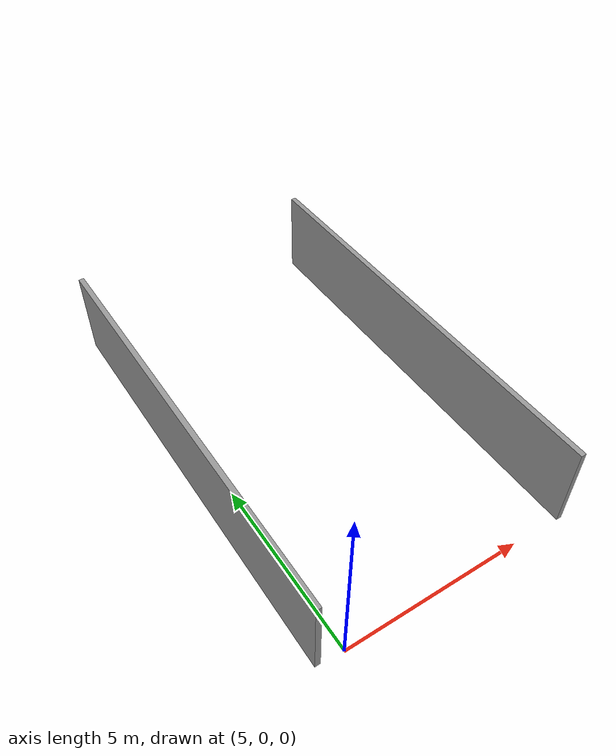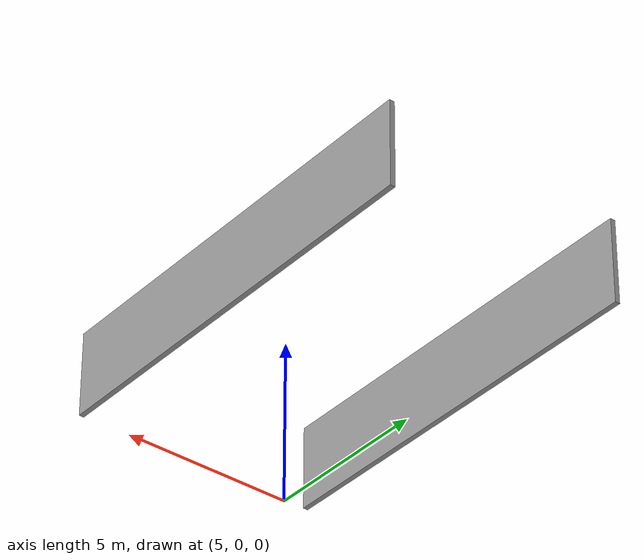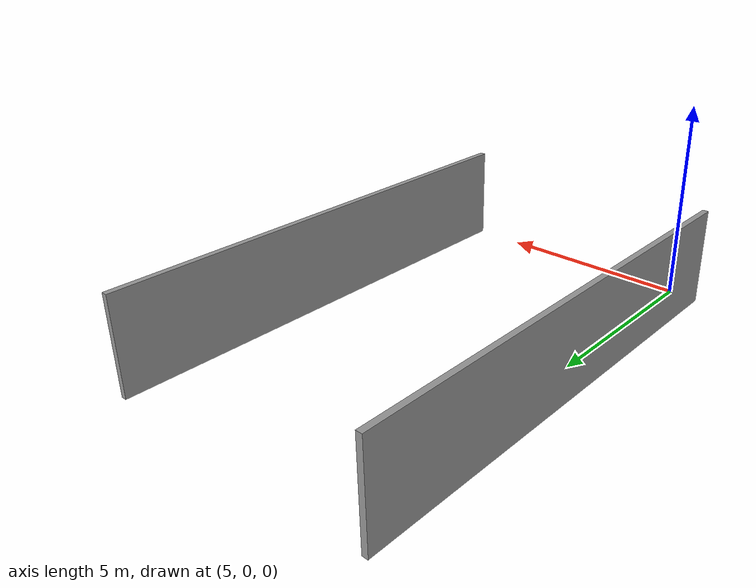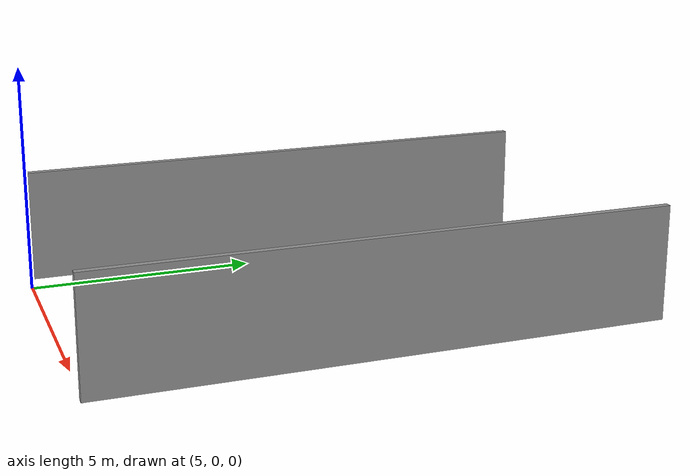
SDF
<?xml version='1.0'?>
<sdf version='1.7'>
  <model name='wall'>
    <pose>5.75783 6.06657 0 0 -0 0</pose>
    <link name='Wall_10'>
      <collision name='Wall_10_Collision'>
        <geometry>
          <box>
            <size>12 0.15 2.5</size>
          </box>
        </geometry>
        <pose>0 0 1.25 0 -0 0</pose>
      </collision>
      <visual name='Wall_10_Visual'>
        <pose>0 0 1.25 0 -0 0</pose>
        <geometry>
          <box>
            <size>12 0.15 2.5</size>
          </box>
        </geometry>
        <material>
          <script>
            <uri>file://media/materials/scripts/gazebo.material</uri>
            <name>Gazebo/Grey</name>
          </script>
          <ambient>1 1 1 1</ambient>
        </material>
        <meta>
          <layer>0</layer>
        </meta>
      </visual>
      <pose>-1.43306 -0.017318 0 0 -0 -1.5708</pose>
    </link>
    <link name='Wall_12'>
      <collision name='Wall_12_Collision'>
        <geometry>
          <box>
            <size>12.25 0.15 2.5</size>
          </box>
        </geometry>
        <pose>0 0 1.25 0 -0 0</pose>
      </collision>
      <visual name='Wall_12_Visual'>
        <pose>0 0 1.25 0 -0 0</pose>
        <geometry>
          <box>
            <size>12.25 0.15 2.5</size>
          </box>
        </geometry>
        <material>
          <script>
            <uri>file://media/materials/scripts/gazebo.material</uri>
            <name>Gazebo/Grey</name>
          </script>
          <ambient>1 1 1 1</ambient>
        </material>
        <meta>
          <layer>0</layer>
        </meta>
      </visual>
      <pose>5.68283 -0 0 0 -0 -1.5708</pose>
    </link>
    <static>1</static>
  </model>
</sdf>
